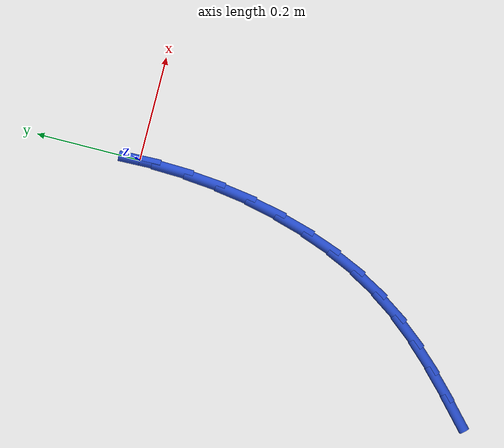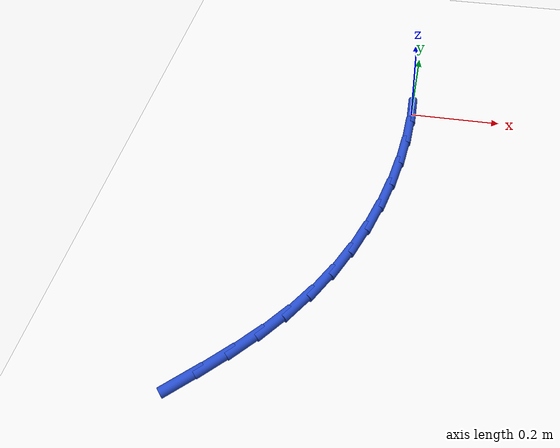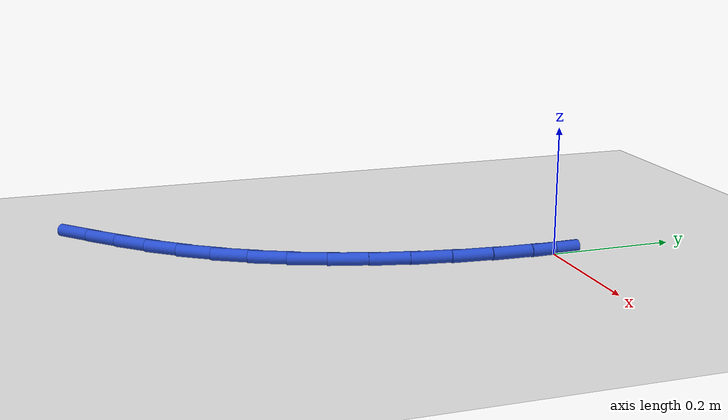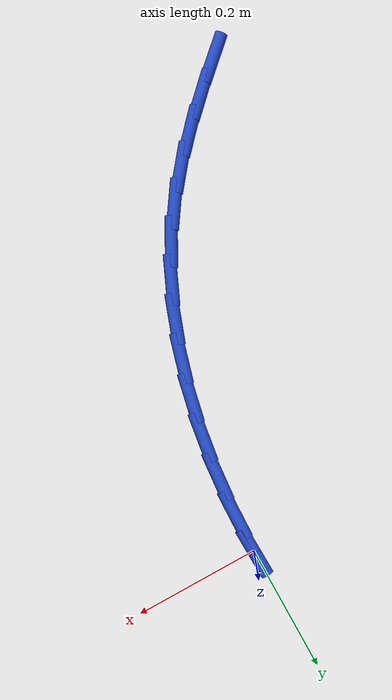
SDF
<sdf version="1.6">
 <world name="default">
  <model name="ground_plane">
   <static>1</static>
   <link name="link">
    <collision name="collision">
     <geometry><plane><normal>0 0 1</normal><size>100 100</size></plane></geometry>
     <surface><friction><ode><mu>100</mu><mu2>50</mu2></ode></friction></surface>
    </collision>
    <visual name="visual">
     <cast_shadows>0</cast_shadows>
     <geometry><plane><normal>0 0 1</normal><size>100 100</size></plane></geometry>
     <material>
      <script><uri>file://media/materials/scripts/gazebo.material</uri><name>Gazebo/WhiteGlow</name></script>
     </material>
    </visual>
   </link>
  </model>
  <model name="line">
   <link name="link_0">
    <pose>6.938893903907228e-18 -5.551115123125783e-17 0.01 0 1.57 -1.5424901434433589</pose>
    <collision name="collision">
     <geometry><cylinder><radius>0.01</radius><length>0.08</length></cylinder></geometry>
    </collision>
    <visual name="visual">
     <material>
      <script><name>Gazebo/Blue</name><uri>file://media/materials/scripts/gazebo.material</uri></script>
     </material>
     <geometry><cylinder><radius>0.01</radius><length>0.08</length></cylinder></geometry>
    </visual>
   </link>
   <link name="link_107">
    <pose>-0.3118185071901026 -0.692691317862564 0.01 0 1.57 0.7412291207635664</pose>
    <collision name="collision">
     <geometry><cylinder><radius>0.01</radius><length>0.08</length></cylinder></geometry>
    </collision>
    <visual name="visual">
     <material>
      <script><name>Gazebo/Blue</name><uri>file://media/materials/scripts/gazebo.material</uri></script>
     </material>
     <geometry><cylinder><radius>0.01</radius><length>0.08</length></cylinder></geometry>
    </visual>
   </link>
   <link name="link_108">
    <pose>-0.2677184970414279 -0.6523245523781732 0.01 0 1.57 0.7742782481923756</pose>
    <collision name="collision">
     <geometry><cylinder><radius>0.01</radius><length>0.08</length></cylinder></geometry>
    </collision>
    <visual name="visual">
     <material>
      <script><name>Gazebo/Blue</name><uri>file://media/materials/scripts/gazebo.material</uri></script>
     </material>
     <geometry><cylinder><radius>0.01</radius><length>0.08</length></cylinder></geometry>
    </visual>
   </link>
   <link name="link_109">
    <pose>-0.22589258591870404 -0.6114186499279172 0.01 0 1.57 0.8259591931543219</pose>
    <collision name="collision">
     <geometry><cylinder><radius>0.01</radius><length>0.08</length></cylinder></geometry>
    </collision>
    <visual name="visual">
     <material>
      <script><name>Gazebo/Blue</name><uri>file://media/materials/scripts/gazebo.material</uri></script>
     </material>
     <geometry><cylinder><radius>0.01</radius><length>0.08</length></cylinder></geometry>
    </visual>
   </link>
   <link name="link_110">
    <pose>-0.18682066171031075 -0.5690412440983628 0.01 0 1.57 0.8958780039929457</pose>
    <collision name="collision">
     <geometry><cylinder><radius>0.01</radius><length>0.08</length></cylinder></geometry>
    </collision>
    <visual name="visual">
     <material>
      <script><name>Gazebo/Blue</name><uri>file://media/materials/scripts/gazebo.material</uri></script>
     </material>
     <geometry><cylinder><radius>0.01</radius><length>0.08</length></cylinder></geometry>
    </visual>
   </link>
   <link name="link_111">
    <pose>-0.15098261230462826 -0.5242599684760768 0.01 0 1.57 0.9817356735029837</pose>
    <collision name="collision">
     <geometry><cylinder><radius>0.01</radius><length>0.08</length></cylinder></geometry>
    </collision>
    <visual name="visual">
     <material>
      <script><name>Gazebo/Blue</name><uri>file://media/materials/scripts/gazebo.material</uri></script>
     </material>
     <geometry><cylinder><radius>0.01</radius><length>0.08</length></cylinder></geometry>
    </visual>
   </link>
   <link name="link_112">
    <pose>-0.1188483460406838 -0.4761688928988631 0.01 0 1.57 1.0710074118276203</pose>
    <collision name="collision">
     <geometry><cylinder><radius>0.01</radius><length>0.08</length></cylinder></geometry>
    </collision>
    <visual name="visual">
     <material>
      <script><name>Gazebo/Blue</name><uri>file://media/materials/scripts/gazebo.material</uri></script>
     </material>
     <geometry><cylinder><radius>0.01</radius><length>0.08</length></cylinder></geometry>
    </visual>
   </link>
   <link name="link_113">
    <pose>-0.09064234296937412 -0.42451223719193487 0.01 0 1.57 1.15332317278306</pose>
    <collision name="collision">
     <geometry><cylinder><radius>0.01</radius><length>0.08</length></cylinder></geometry>
    </collision>
    <visual name="visual">
     <material>
      <script><name>Gazebo/Blue</name><uri>file://media/materials/scripts/gazebo.material</uri></script>
     </material>
     <geometry><cylinder><radius>0.01</radius><length>0.08</length></cylinder></geometry>
    </visual>
   </link>
   <link name="link_114">
    <pose>-0.0663344832061375 -0.3697086672522712 0.01 0 1.57 1.2290724348869586</pose>
    <collision name="collision">
     <geometry><cylinder><radius>0.01</radius><length>0.08</length></cylinder></geometry>
    </collision>
    <visual name="visual">
     <material>
      <script><name>Gazebo/Blue</name><uri>file://media/materials/scripts/gazebo.material</uri></script>
     </material>
     <geometry><cylinder><radius>0.01</radius><length>0.08</length></cylinder></geometry>
    </visual>
   </link>
   <link name="link_115">
    <pose>-0.045882832213540586 -0.31220814649546347 0.01 0 1.57 1.299214905330032</pose>
    <collision name="collision">
     <geometry><cylinder><radius>0.01</radius><length>0.08</length></cylinder></geometry>
    </collision>
    <visual name="visual">
     <material>
      <script><name>Gazebo/Blue</name><uri>file://media/materials/scripts/gazebo.material</uri></script>
     </material>
     <geometry><cylinder><radius>0.01</radius><length>0.08</length></cylinder></geometry>
    </visual>
   </link>
   <link name="link_116">
    <pose>-0.029245455454150873 -0.252460638337105 0.01 0 1.57 1.3647273728466758</pose>
    <collision name="collision">
     <geometry><cylinder><radius>0.01</radius><length>0.08</length></cylinder></geometry>
    </collision>
    <visual name="visual">
     <material>
      <script><name>Gazebo/Blue</name><uri>file://media/materials/scripts/gazebo.material</uri></script>
     </material>
     <geometry><cylinder><radius>0.01</radius><length>0.08</length></cylinder></geometry>
    </visual>
   </link>
   <link name="link_117">
    <pose>-0.016380418390535022 -0.19091610619278745 0.01 0 1.57 1.426560853540907</pose>
    <collision name="collision">
     <geometry><cylinder><radius>0.01</radius><length>0.08</length></cylinder></geometry>
    </collision>
    <visual name="visual">
     <material>
      <script><name>Gazebo/Blue</name><uri>file://media/materials/scripts/gazebo.material</uri></script>
     </material>
     <geometry><cylinder><radius>0.01</radius><length>0.08</length></cylinder></geometry>
    </visual>
   </link>
   <link name="link_118">
    <pose>-0.007245786485259959 -0.1280245134781028 0.01 0 1.57 1.4856247119833295</pose>
    <collision name="collision">
     <geometry><cylinder><radius>0.01</radius><length>0.08</length></cylinder></geometry>
    </collision>
    <visual name="visual">
     <material>
      <script><name>Gazebo/Blue</name><uri>file://media/materials/scripts/gazebo.material</uri></script>
     </material>
     <geometry><cylinder><radius>0.01</radius><length>0.08</length></cylinder></geometry>
    </visual>
   </link>
   <link name="link_119">
    <pose>-0.00179962520089259 -0.06423582360864238 0.01 0 1.57 1.542787740858228</pose>
    <collision name="collision">
     <geometry><cylinder><radius>0.01</radius><length>0.08</length></cylinder></geometry>
    </collision>
    <visual name="visual">
     <material>
      <script><name>Gazebo/Blue</name><uri>file://media/materials/scripts/gazebo.material</uri></script>
     </material>
     <geometry><cylinder><radius>0.01</radius><length>0.08</length></cylinder></geometry>
    </visual>
   </link>
   <link name="link_120">
    <pose>3.469446951953614e-18 -1.3877787807814457e-17 0.01 0 1.57 -1.5427032648266978</pose>
    <collision name="collision">
     <geometry><cylinder><radius>0.01</radius><length>0.08</length></cylinder></geometry>
    </collision>
    <visual name="visual">
     <material>
      <script><name>Gazebo/Blue</name><uri>file://media/materials/scripts/gazebo.material</uri></script>
     </material>
     <geometry><cylinder><radius>0.01</radius><length>0.08</length></cylinder></geometry>
    </visual>
   </link>
  </model>
 </world>
</sdf>
